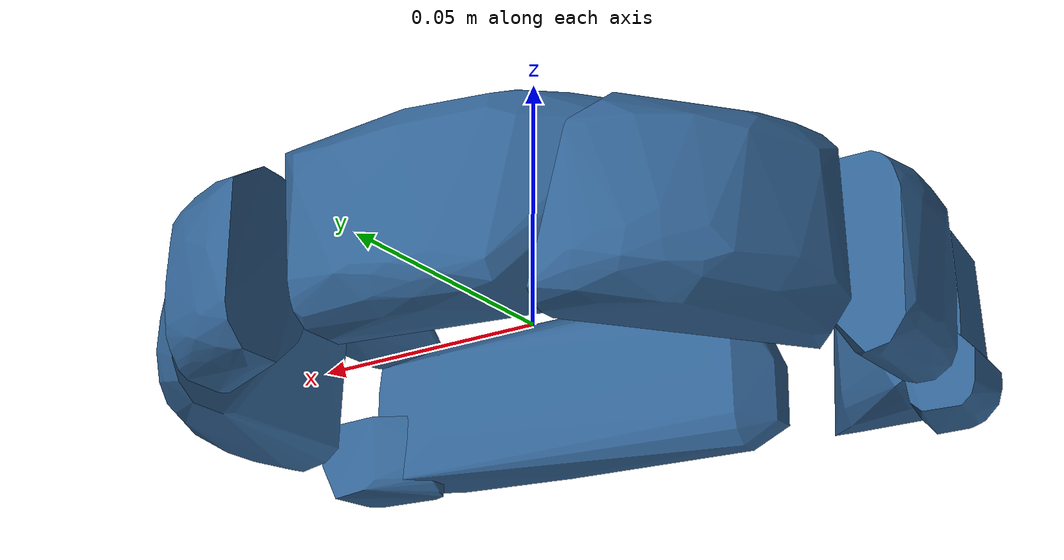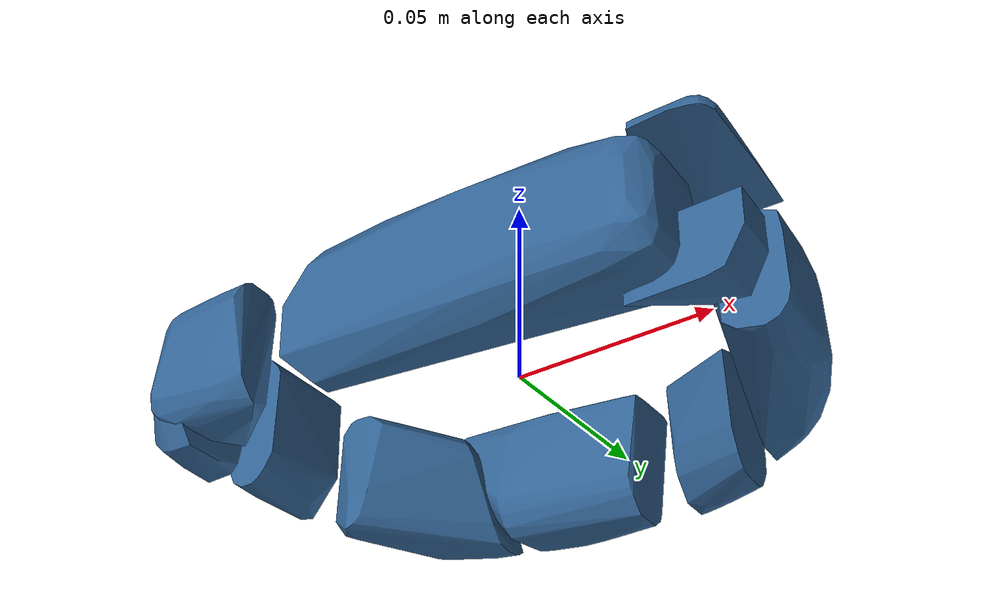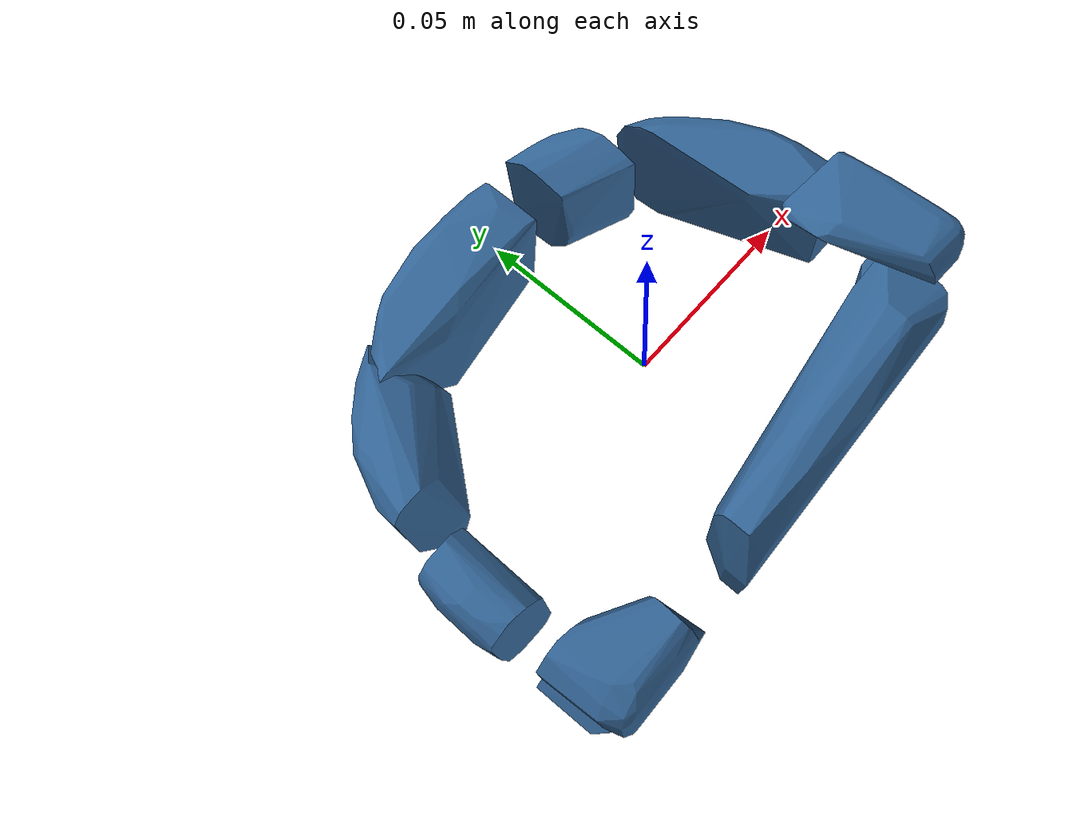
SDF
<?xml version='1.0' encoding='UTF-8'?>
<!-- This SDF was autogenerated by obj_to_drake_sdf.py -->
<sdf version="1.7">
  <model name="D_shape_texture">
    <link name="D_shape_texture">
      <inertial>
        <pose>0 0 0 0 0 0</pose>
        <mass>0.05</mass>
        <inertia>
          <ixx>8.8000935e-05</ixx>
          <iyy>0.00012360901</iyy>
          <izz>0.00019485895</izz>
          <ixy>-9.2948423e-07</ixy>
          <ixz>-1.1832486e-06</ixz>
          <iyz>2.3264505e-06</iyz>
        </inertia>
      </inertial>
      <visual name="convex_0">
        <pose>0 0 0 0 0 0</pose>
        <geometry>
          <mesh>
            <uri>D_shape_texture_convex_0.obj</uri>
          </mesh>
        </geometry>
        <material>
          <diffuse>0.19607843137254902 0.39215686274509803 0.5882352941176471 1</diffuse>
        </material>
      </visual>
      <collision name="convex_0_volume">
        <pose>0 0 0 0 0 0</pose>
        <geometry>
          <mesh>
            <uri>D_shape_texture_convex_0.obj</uri>
          </mesh>
        </geometry>
        <drake:proximity_properties xmlns:drake="uri:drake">
          <drake:compliant_hydroelastic/>
          <drake:hydroelastic_modulus> 3.0e7 </drake:hydroelastic_modulus>
          <drake:mesh_resolution_hint> 0.02 </drake:mesh_resolution_hint>
          <drake:hunt_crossley_dissipation>10</drake:hunt_crossley_dissipation>
          <drake:mu_dynamic>0.3</drake:mu_dynamic>
        </drake:proximity_properties>
      </collision>
      <visual name="convex_1">
        <pose>0 0 0 0 0 0</pose>
        <geometry>
          <mesh>
            <uri>D_shape_texture_convex_1.obj</uri>
          </mesh>
        </geometry>
        <material>
          <diffuse>0.19607843137254902 0.39215686274509803 0.5882352941176471 1</diffuse>
        </material>
      </visual>
      <collision name="convex_1_volume">
        <pose>0 0 0 0 0 0</pose>
        <geometry>
          <mesh>
            <uri>D_shape_texture_convex_1.obj</uri>
          </mesh>
        </geometry>
        <drake:proximity_properties xmlns:drake="uri:drake">
          <drake:compliant_hydroelastic/>
          <drake:hydroelastic_modulus> 3.0e7 </drake:hydroelastic_modulus>
          <drake:mesh_resolution_hint> 0.02 </drake:mesh_resolution_hint>
          <drake:hunt_crossley_dissipation>10</drake:hunt_crossley_dissipation>
          <drake:mu_dynamic>0.3</drake:mu_dynamic>
        </drake:proximity_properties>
      </collision>
      <visual name="convex_2">
        <pose>0 0 0 0 0 0</pose>
        <geometry>
          <mesh>
            <uri>D_shape_texture_convex_2.obj</uri>
          </mesh>
        </geometry>
        <material>
          <diffuse>0.19607843137254902 0.39215686274509803 0.5882352941176471 1</diffuse>
        </material>
      </visual>
      <collision name="convex_2_volume">
        <pose>0 0 0 0 0 0</pose>
        <geometry>
          <mesh>
            <uri>D_shape_texture_convex_2.obj</uri>
          </mesh>
        </geometry>
        <drake:proximity_properties xmlns:drake="uri:drake">
          <drake:compliant_hydroelastic/>
          <drake:hydroelastic_modulus> 3.0e7 </drake:hydroelastic_modulus>
          <drake:mesh_resolution_hint> 0.02 </drake:mesh_resolution_hint>
          <drake:hunt_crossley_dissipation>10</drake:hunt_crossley_dissipation>
          <drake:mu_dynamic>0.3</drake:mu_dynamic>
        </drake:proximity_properties>
      </collision>
      <visual name="convex_3">
        <pose>0 0 0 0 0 0</pose>
        <geometry>
          <mesh>
            <uri>D_shape_texture_convex_3.obj</uri>
          </mesh>
        </geometry>
        <material>
          <diffuse>0.19607843137254902 0.39215686274509803 0.5882352941176471 1</diffuse>
        </material>
      </visual>
      <collision name="convex_3_volume">
        <pose>0 0 0 0 0 0</pose>
        <geometry>
          <mesh>
            <uri>D_shape_texture_convex_3.obj</uri>
          </mesh>
        </geometry>
        <drake:proximity_properties xmlns:drake="uri:drake">
          <drake:compliant_hydroelastic/>
          <drake:hydroelastic_modulus> 3.0e7 </drake:hydroelastic_modulus>
          <drake:mesh_resolution_hint> 0.02 </drake:mesh_resolution_hint>
          <drake:hunt_crossley_dissipation>10</drake:hunt_crossley_dissipation>
          <drake:mu_dynamic>0.3</drake:mu_dynamic>
        </drake:proximity_properties>
      </collision>
      <visual name="convex_4">
        <pose>0 0 0 0 0 0</pose>
        <geometry>
          <mesh>
            <uri>D_shape_texture_convex_4.obj</uri>
          </mesh>
        </geometry>
        <material>
          <diffuse>0.19607843137254902 0.39215686274509803 0.5882352941176471 1</diffuse>
        </material>
      </visual>
      <collision name="convex_4_volume">
        <pose>0 0 0 0 0 0</pose>
        <geometry>
          <mesh>
            <uri>D_shape_texture_convex_4.obj</uri>
          </mesh>
        </geometry>
        <drake:proximity_properties xmlns:drake="uri:drake">
          <drake:compliant_hydroelastic/>
          <drake:hydroelastic_modulus> 3.0e7 </drake:hydroelastic_modulus>
          <drake:mesh_resolution_hint> 0.02 </drake:mesh_resolution_hint>
          <drake:hunt_crossley_dissipation>10</drake:hunt_crossley_dissipation>
          <drake:mu_dynamic>0.3</drake:mu_dynamic>
        </drake:proximity_properties>
      </collision>
      <visual name="convex_5">
        <pose>0 0 0 0 0 0</pose>
        <geometry>
          <mesh>
            <uri>D_shape_texture_convex_5.obj</uri>
          </mesh>
        </geometry>
        <material>
          <diffuse>0.19607843137254902 0.39215686274509803 0.5882352941176471 1</diffuse>
        </material>
      </visual>
      <collision name="convex_5_volume">
        <pose>0 0 0 0 0 0</pose>
        <geometry>
          <mesh>
            <uri>D_shape_texture_convex_5.obj</uri>
          </mesh>
        </geometry>
        <drake:proximity_properties xmlns:drake="uri:drake">
          <drake:compliant_hydroelastic/>
          <drake:hydroelastic_modulus> 3.0e7 </drake:hydroelastic_modulus>
          <drake:mesh_resolution_hint> 0.02 </drake:mesh_resolution_hint>
          <drake:hunt_crossley_dissipation>10</drake:hunt_crossley_dissipation>
          <drake:mu_dynamic>0.3</drake:mu_dynamic>
        </drake:proximity_properties>
      </collision>
      <visual name="convex_6">
        <pose>0 0 0 0 0 0</pose>
        <geometry>
          <mesh>
            <uri>D_shape_texture_convex_6.obj</uri>
          </mesh>
        </geometry>
        <material>
          <diffuse>0.19607843137254902 0.39215686274509803 0.5882352941176471 1</diffuse>
        </material>
      </visual>
      <collision name="convex_6_volume">
        <pose>0 0 0 0 0 0</pose>
        <geometry>
          <mesh>
            <uri>D_shape_texture_convex_6.obj</uri>
          </mesh>
        </geometry>
        <drake:proximity_properties xmlns:drake="uri:drake">
          <drake:compliant_hydroelastic/>
          <drake:hydroelastic_modulus> 3.0e7 </drake:hydroelastic_modulus>
          <drake:mesh_resolution_hint> 0.02 </drake:mesh_resolution_hint>
          <drake:hunt_crossley_dissipation>10</drake:hunt_crossley_dissipation>
          <drake:mu_dynamic>0.3</drake:mu_dynamic>
        </drake:proximity_properties>
      </collision>
      <visual name="convex_7">
        <pose>0 0 0 0 0 0</pose>
        <geometry>
          <mesh>
            <uri>D_shape_texture_convex_7.obj</uri>
          </mesh>
        </geometry>
        <material>
          <diffuse>0.19607843137254902 0.39215686274509803 0.5882352941176471 1</diffuse>
        </material>
      </visual>
      <collision name="convex_7_volume">
        <pose>0 0 0 0 0 0</pose>
        <geometry>
          <mesh>
            <uri>D_shape_texture_convex_7.obj</uri>
          </mesh>
        </geometry>
        <drake:proximity_properties xmlns:drake="uri:drake">
          <drake:compliant_hydroelastic/>
          <drake:hydroelastic_modulus> 3.0e7 </drake:hydroelastic_modulus>
          <drake:mesh_resolution_hint> 0.02 </drake:mesh_resolution_hint>
          <drake:hunt_crossley_dissipation>10</drake:hunt_crossley_dissipation>
          <drake:mu_dynamic>0.3</drake:mu_dynamic>
        </drake:proximity_properties>
      </collision>
      <visual name="convex_8">
        <pose>0 0 0 0 0 0</pose>
        <geometry>
          <mesh>
            <uri>D_shape_texture_convex_8.obj</uri>
          </mesh>
        </geometry>
        <material>
          <diffuse>0.19607843137254902 0.39215686274509803 0.5882352941176471 1</diffuse>
        </material>
      </visual>
      <collision name="convex_8_volume">
        <pose>0 0 0 0 0 0</pose>
        <geometry>
          <mesh>
            <uri>D_shape_texture_convex_8.obj</uri>
          </mesh>
        </geometry>
        <drake:proximity_properties xmlns:drake="uri:drake">
          <drake:compliant_hydroelastic/>
          <drake:hydroelastic_modulus> 3.0e7 </drake:hydroelastic_modulus>
          <drake:mesh_resolution_hint> 0.02 </drake:mesh_resolution_hint>
          <drake:hunt_crossley_dissipation>10</drake:hunt_crossley_dissipation>
          <drake:mu_dynamic>0.3</drake:mu_dynamic>
        </drake:proximity_properties>
      </collision>
      <visual name="convex_9">
        <pose>0 0 0 0 0 0</pose>
        <geometry>
          <mesh>
            <uri>D_shape_texture_convex_9.obj</uri>
          </mesh>
        </geometry>
        <material>
          <diffuse>0.19607843137254902 0.39215686274509803 0.5882352941176471 1</diffuse>
        </material>
      </visual>
      <collision name="convex_9_volume">
        <pose>0 0 0 0 0 0</pose>
        <geometry>
          <mesh>
            <uri>D_shape_texture_convex_9.obj</uri>
          </mesh>
        </geometry>
        <drake:proximity_properties xmlns:drake="uri:drake">
          <drake:compliant_hydroelastic/>
          <drake:hydroelastic_modulus> 3.0e7 </drake:hydroelastic_modulus>
          <drake:mesh_resolution_hint> 0.02 </drake:mesh_resolution_hint>
          <drake:hunt_crossley_dissipation>10</drake:hunt_crossley_dissipation>
          <drake:mu_dynamic>0.3</drake:mu_dynamic>
        </drake:proximity_properties>
      </collision>
    </link>
  </model>
</sdf>
